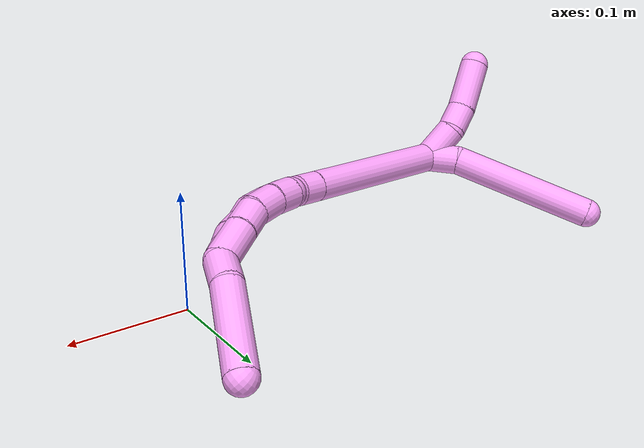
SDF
<sdf version="1.7">
 <world name="default">
  <model name="4">
   <static>0</static>
   <link name="4">
    <collision name="collision-cylinder-e_1_2_8">
     <pose>-0.009016 0.004822 0.008979 -0.492837 -0.724253 0.190002</pose>
     <geometry><cylinder><radius>0.0125</radius><length>0.027214</length></cylinder></geometry>
     <surface>
      <friction><ode><mu>1.16</mu><mu2>1.16</mu2><slip1>0</slip1><slip2>0</slip2></ode></friction>
      <contact><ode><kp>1e+06</kp><kd>1</kd><max_vel>0</max_vel><min_depth>0.001</min_depth></ode></contact>
     </surface>
    </collision>
    <visual name="visual-cylinder-e_1_2_8">
     <pose>-0.009016 0.004822 0.008979 -0.492837 -0.724253 0.190002</pose>
     <geometry><cylinder><radius>0.0125</radius><length>0.027214</length></cylinder></geometry>
     <material><ambient>1 0.65098 0.996078 1</ambient></material>
    </visual>
    <collision name="collision-cylinder-e_2_8_6">
     <pose>-0.068056 0.033826 0.044069 -0.74704 -0.952442 0.39894</pose>
     <geometry><cylinder><radius>0.0125</radius><length>0.122786</length></cylinder></geometry>
     <surface>
      <friction><ode><mu>1.16</mu><mu2>1.16</mu2><slip1>0</slip1><slip2>0</slip2></ode></friction>
      <contact><ode><kp>1e+06</kp><kd>1</kd><max_vel>0</max_vel><min_depth>0.001</min_depth></ode></contact>
     </surface>
    </collision>
    <visual name="visual-cylinder-e_2_8_6">
     <pose>-0.068056 0.033826 0.044069 -0.74704 -0.952442 0.39894</pose>
     <geometry><cylinder><radius>0.0125</radius><length>0.122786</length></cylinder></geometry>
     <material><ambient>1 0.65098 0.996078 1</ambient></material>
    </visual>
    <collision name="collision-cylinder-e_1_2_9">
     <pose>0.000697 -0.003339 0.016163 0.203704 0.042205 0.004314</pose>
     <geometry><cylinder><radius>0.0125</radius><length>0.033038</length></cylinder></geometry>
     <surface>
      <friction><ode><mu>1.16</mu><mu2>1.16</mu2><slip1>0</slip1><slip2>0</slip2></ode></friction>
      <contact><ode><kp>1e+06</kp><kd>1</kd><max_vel>0</max_vel><min_depth>0.001</min_depth></ode></contact>
     </surface>
    </collision>
    <visual name="visual-cylinder-e_1_2_9">
     <pose>0.000697 -0.003339 0.016163 0.203704 0.042205 0.004314</pose>
     <geometry><cylinder><radius>0.0125</radius><length>0.033038</length></cylinder></geometry>
     <material><ambient>1 0.65098 0.996078 1</ambient></material>
    </visual>
    <collision name="collision-cylinder-e_2_9_10">
     <pose>0.003161 -0.012337 0.041925 0.532771 0.157229 0.042985</pose>
     <geometry><cylinder><radius>0.0125</radius><length>0.022564</length></cylinder></geometry>
     <surface>
      <friction><ode><mu>1.16</mu><mu2>1.16</mu2><slip1>0</slip1><slip2>0</slip2></ode></friction>
      <contact><ode><kp>1e+06</kp><kd>1</kd><max_vel>0</max_vel><min_depth>0.001</min_depth></ode></contact>
     </surface>
    </collision>
    <visual name="visual-cylinder-e_2_9_10">
     <pose>0.003161 -0.012337 0.041925 0.532771 0.157229 0.042985</pose>
     <geometry><cylinder><radius>0.0125</radius><length>0.022564</length></cylinder></geometry>
     <material><ambient>1 0.65098 0.996078 1</ambient></material>
    </visual>
    <collision name="collision-cylinder-e_3_10_5">
     <pose>0.012429 -0.0285 0.069584 0.526718 0.344728 0.093809</pose>
     <geometry><cylinder><radius>0.0125</radius><length>0.044398</length></cylinder></geometry>
     <surface>
      <friction><ode><mu>1.16</mu><mu2>1.16</mu2><slip1>0</slip1><slip2>0</slip2></ode></friction>
      <contact><ode><kp>1e+06</kp><kd>1</kd><max_vel>0</max_vel><min_depth>0.001</min_depth></ode></contact>
     </surface>
    </collision>
    <visual name="visual-cylinder-e_3_10_5">
     <pose>0.012429 -0.0285 0.069584 0.526718 0.344728 0.093809</pose>
     <geometry><cylinder><radius>0.0125</radius><length>0.044398</length></cylinder></geometry>
     <material><ambient>1 0.65098 0.996078 1</ambient></material>
    </visual>
    <collision name="collision-cylinder-e_1_2_11">
     <pose>0.040575 0.039306 -0.040175 -2.36713 0.625285 -1.34043</pose>
     <geometry><cylinder><radius>0.0125</radius><length>0.138642</length></cylinder></geometry>
     <surface>
      <friction><ode><mu>1.16</mu><mu2>1.16</mu2><slip1>0</slip1><slip2>0</slip2></ode></friction>
      <contact><ode><kp>1e+06</kp><kd>1</kd><max_vel>0</max_vel><min_depth>0.001</min_depth></ode></contact>
     </surface>
    </collision>
    <visual name="visual-cylinder-e_1_2_11">
     <pose>0.040575 0.039306 -0.040175 -2.36713 0.625285 -1.34043</pose>
     <geometry><cylinder><radius>0.0125</radius><length>0.138642</length></cylinder></geometry>
     <material><ambient>1 0.65098 0.996078 1</ambient></material>
    </visual>
    <collision name="collision-cylinder-e_2_11_12">
     <pose>0.087299 0.084783 -0.086165 -2.32657 0.627382 -1.28892</pose>
     <geometry><cylinder><radius>0.0125</radius><length>0.020946</length></cylinder></geometry>
     <surface>
      <friction><ode><mu>1.16</mu><mu2>1.16</mu2><slip1>0</slip1><slip2>0</slip2></ode></friction>
      <contact><ode><kp>1e+06</kp><kd>1</kd><max_vel>0</max_vel><min_depth>0.001</min_depth></ode></contact>
     </surface>
    </collision>
    <visual name="visual-cylinder-e_2_11_12">
     <pose>0.087299 0.084783 -0.086165 -2.32657 0.627382 -1.28892</pose>
     <geometry><cylinder><radius>0.0125</radius><length>0.020946</length></cylinder></geometry>
     <material><ambient>1 0.65098 0.996078 1</ambient></material>
    </visual>
    <collision name="collision-cylinder-e_3_12_13">
     <pose>0.099042 0.098427 -0.096041 -2.06852 0.581808 -0.932751</pose>
     <geometry><cylinder><radius>0.0125</radius><length>0.020362</length></cylinder></geometry>
     <surface>
      <friction><ode><mu>1.16</mu><mu2>1.16</mu2><slip1>0</slip1><slip2>0</slip2></ode></friction>
      <contact><ode><kp>1e+06</kp><kd>1</kd><max_vel>0</max_vel><min_depth>0.001</min_depth></ode></contact>
     </surface>
    </collision>
    <visual name="visual-cylinder-e_3_12_13">
     <pose>0.099042 0.098427 -0.096041 -2.06852 0.581808 -0.932751</pose>
     <geometry><cylinder><radius>0.0125</radius><length>0.020362</length></cylinder></geometry>
     <material><ambient>1 0.65098 0.996078 1</ambient></material>
    </visual>
    <collision name="collision-cylinder-e_4_13_14">
     <pose>0.109526 0.112354 -0.105978 -2.3094 0.510674 -1.06712</pose>
     <geometry><cylinder><radius>0.0125</radius><length>0.020006</length></cylinder></geometry>
     <surface>
      <friction><ode><mu>1.16</mu><mu2>1.16</mu2><slip1>0</slip1><slip2>0</slip2></ode></friction>
      <contact><ode><kp>1e+06</kp><kd>1</kd><max_vel>0</max_vel><min_depth>0.001</min_depth></ode></contact>
     </surface>
    </collision>
    <visual name="visual-cylinder-e_4_13_14">
     <pose>0.109526 0.112354 -0.105978 -2.3094 0.510674 -1.06712</pose>
     <geometry><cylinder><radius>0.0125</radius><length>0.020006</length></cylinder></geometry>
     <material><ambient>1 0.65098 0.996078 1</ambient></material>
    </visual>
    <collision name="collision-cylinder-e_5_14_15">
     <pose>0.11864 0.126564 -0.116584 -2.1184 0.435248 -0.750375</pose>
     <geometry><cylinder><radius>0.0125</radius><length>0.020041</length></cylinder></geometry>
     <surface>
      <friction><ode><mu>1.16</mu><mu2>1.16</mu2><slip1>0</slip1><slip2>0</slip2></ode></friction>
      <contact><ode><kp>1e+06</kp><kd>1</kd><max_vel>0</max_vel><min_depth>0.001</min_depth></ode></contact>
     </surface>
    </collision>
    <visual name="visual-cylinder-e_5_14_15">
     <pose>0.11864 0.126564 -0.116584 -2.1184 0.435248 -0.750375</pose>
     <geometry><cylinder><radius>0.0125</radius><length>0.020041</length></cylinder></geometry>
     <material><ambient>1 0.65098 0.996078 1</ambient></material>
    </visual>
    <collision name="collision-cylinder-e_6_15_16">
     <pose>0.12419 0.143376 -0.125348 -1.98986 0.132918 -0.204305</pose>
     <geometry><cylinder><radius>0.0125</radius><length>0.020001</length></cylinder></geometry>
     <surface>
      <friction><ode><mu>1.16</mu><mu2>1.16</mu2><slip1>0</slip1><slip2>0</slip2></ode></friction>
      <contact><ode><kp>1e+06</kp><kd>1</kd><max_vel>0</max_vel><min_depth>0.001</min_depth></ode></contact>
     </surface>
    </collision>
    <visual name="visual-cylinder-e_6_15_16">
     <pose>0.12419 0.143376 -0.125348 -1.98986 0.132918 -0.204305</pose>
     <geometry><cylinder><radius>0.0125</radius><length>0.020001</length></cylinder></geometry>
     <material><ambient>1 0.65098 0.996078 1</ambient></material>
    </visual>
    <collision name="collision-cylinder-e_7_16_17">
     <pose>0.128121 0.161102 -0.133627 -2.02616 0.26359 -0.418806</pose>
     <geometry><cylinder><radius>0.0125</radius><length>0.02</length></cylinder></geometry>
     <surface>
      <friction><ode><mu>1.16</mu><mu2>1.16</mu2><slip1>0</slip1><slip2>0</slip2></ode></friction>
      <contact><ode><kp>1e+06</kp><kd>1</kd><max_vel>0</max_vel><min_depth>0.001</min_depth></ode></contact>
     </surface>
    </collision>
    <visual name="visual-cylinder-e_7_16_17">
     <pose>0.128121 0.161102 -0.133627 -2.02616 0.26359 -0.418806</pose>
     <geometry><cylinder><radius>0.0125</radius><length>0.02</length></cylinder></geometry>
     <material><ambient>1 0.65098 0.996078 1</ambient></material>
    </visual>
    <collision name="collision-cylinder-e_8_17_18">
     <pose>0.131612 0.179454 -0.140216 -1.80823 0.088615 -0.112572</pose>
     <geometry><cylinder><radius>0.0125</radius><length>0.02</length></cylinder></geometry>
     <surface>
      <friction><ode><mu>1.16</mu><mu2>1.16</mu2><slip1>0</slip1><slip2>0</slip2></ode></friction>
      <contact><ode><kp>1e+06</kp><kd>1</kd><max_vel>0</max_vel><min_depth>0.001</min_depth></ode></contact>
     </surface>
    </collision>
    <visual name="visual-cylinder-e_8_17_18">
     <pose>0.131612 0.179454 -0.140216 -1.80823 0.088615 -0.112572</pose>
     <geometry><cylinder><radius>0.0125</radius><length>0.02</length></cylinder></geometry>
     <material><ambient>1 0.65098 0.996078 1</ambient></material>
    </visual>
    <collision name="collision-cylinder-e_9_18_1">
     <pose>0.134131 0.198696 -0.144997 -1.82046 0.1642 -0.211013</pose>
     <geometry><cylinder><radius>0.0125</radius><length>0.020001</length></cylinder></geometry>
     <surface>
      <friction><ode><mu>1.16</mu><mu2>1.16</mu2><slip1>0</slip1><slip2>0</slip2></ode></friction>
      <contact><ode><kp>1e+06</kp><kd>1</kd><max_vel>0</max_vel><min_depth>0.001</min_depth></ode></contact>
     </surface>
    </collision>
    <visual name="visual-cylinder-e_9_18_1">
     <pose>0.134131 0.198696 -0.144997 -1.82046 0.1642 -0.211013</pose>
     <geometry><cylinder><radius>0.0125</radius><length>0.020001</length></cylinder></geometry>
     <material><ambient>1 0.65098 0.996078 1</ambient></material>
    </visual>
    <collision name="collision-cylinder-e_1_1_19">
     <pose>0.134464 0.195251 -0.137412 0.914196 -0.079153 -0.038946</pose>
     <geometry><cylinder><radius>0.0125</radius><length>0.03294</length></cylinder></geometry>
     <surface>
      <friction><ode><mu>1.16</mu><mu2>1.16</mu2><slip1>0</slip1><slip2>0</slip2></ode></friction>
      <contact><ode><kp>1e+06</kp><kd>1</kd><max_vel>0</max_vel><min_depth>0.001</min_depth></ode></contact>
     </surface>
    </collision>
    <visual name="visual-cylinder-e_1_1_19">
     <pose>0.134464 0.195251 -0.137412 0.914196 -0.079153 -0.038946</pose>
     <geometry><cylinder><radius>0.0125</radius><length>0.03294</length></cylinder></geometry>
     <material><ambient>1 0.65098 0.996078 1</ambient></material>
    </visual>
    <collision name="collision-cylinder-e_2_19_20">
     <pose>0.131954 0.172903 -0.121069 0.976002 -0.106662 -0.056657</pose>
     <geometry><cylinder><radius>0.0125</radius><length>0.022691</length></cylinder></geometry>
     <surface>
      <friction><ode><mu>1.16</mu><mu2>1.16</mu2><slip1>0</slip1><slip2>0</slip2></ode></friction>
      <contact><ode><kp>1e+06</kp><kd>1</kd><max_vel>0</max_vel><min_depth>0.001</min_depth></ode></contact>
     </surface>
    </collision>
    <visual name="visual-cylinder-e_2_19_20">
     <pose>0.131954 0.172903 -0.121069 0.976002 -0.106662 -0.056657</pose>
     <geometry><cylinder><radius>0.0125</radius><length>0.022691</length></cylinder></geometry>
     <material><ambient>1 0.65098 0.996078 1</ambient></material>
    </visual>
    <collision name="collision-cylinder-e_3_20_21">
     <pose>0.125986 0.154998 -0.107987 0.902353 -0.411443 -0.201523</pose>
     <geometry><cylinder><radius>0.0125</radius><length>0.023803</length></cylinder></geometry>
     <surface>
      <friction><ode><mu>1.16</mu><mu2>1.16</mu2><slip1>0</slip1><slip2>0</slip2></ode></friction>
      <contact><ode><kp>1e+06</kp><kd>1</kd><max_vel>0</max_vel><min_depth>0.001</min_depth></ode></contact>
     </surface>
    </collision>
    <visual name="visual-cylinder-e_3_20_21">
     <pose>0.125986 0.154998 -0.107987 0.902353 -0.411443 -0.201523</pose>
     <geometry><cylinder><radius>0.0125</radius><length>0.023803</length></cylinder></geometry>
     <material><ambient>1 0.65098 0.996078 1</ambient></material>
    </visual>
    <collision name="collision-cylinder-e_4_21_4">
     <pose>0.116039 0.13931 -0.095932 0.931934 -0.528818 -0.270655</pose>
     <geometry><cylinder><radius>0.0125</radius><length>0.020566</length></cylinder></geometry>
     <surface>
      <friction><ode><mu>1.16</mu><mu2>1.16</mu2><slip1>0</slip1><slip2>0</slip2></ode></friction>
      <contact><ode><kp>1e+06</kp><kd>1</kd><max_vel>0</max_vel><min_depth>0.001</min_depth></ode></contact>
     </surface>
    </collision>
    <visual name="visual-cylinder-e_4_21_4">
     <pose>0.116039 0.13931 -0.095932 0.931934 -0.528818 -0.270655</pose>
     <geometry><cylinder><radius>0.0125</radius><length>0.020566</length></cylinder></geometry>
     <material><ambient>1 0.65098 0.996078 1</ambient></material>
    </visual>
    <collision name="collision-cylinder-e_1_1_22">
     <pose>0.132103 0.220566 -0.14883 -1.68365 -0.287525 0.321392</pose>
     <geometry><cylinder><radius>0.0125</radius><length>0.025838</length></cylinder></geometry>
     <surface>
      <friction><ode><mu>1.16</mu><mu2>1.16</mu2><slip1>0</slip1><slip2>0</slip2></ode></friction>
      <contact><ode><kp>1e+06</kp><kd>1</kd><max_vel>0</max_vel><min_depth>0.001</min_depth></ode></contact>
     </surface>
    </collision>
    <visual name="visual-cylinder-e_1_1_22">
     <pose>0.132103 0.220566 -0.14883 -1.68365 -0.287525 0.321392</pose>
     <geometry><cylinder><radius>0.0125</radius><length>0.025838</length></cylinder></geometry>
     <material><ambient>1 0.65098 0.996078 1</ambient></material>
    </visual>
    <collision name="collision-cylinder-e_2_22_3">
     <pose>0.114364 0.265463 -0.160946 -1.88863 -0.389337 0.531943</pose>
     <geometry><cylinder><radius>0.0125</radius><length>0.074162</length></cylinder></geometry>
     <surface>
      <friction><ode><mu>1.16</mu><mu2>1.16</mu2><slip1>0</slip1><slip2>0</slip2></ode></friction>
      <contact><ode><kp>1e+06</kp><kd>1</kd><max_vel>0</max_vel><min_depth>0.001</min_depth></ode></contact>
     </surface>
    </collision>
    <visual name="visual-cylinder-e_2_22_3">
     <pose>0.114364 0.265463 -0.160946 -1.88863 -0.389337 0.531943</pose>
     <geometry><cylinder><radius>0.0125</radius><length>0.074162</length></cylinder></geometry>
     <material><ambient>1 0.65098 0.996078 1</ambient></material>
    </visual>
    <collision name="collision-sphere-3">
     <pose>0.100289 0.298051 -0.171666 0 -0 0</pose>
     <geometry><sphere><radius>0.0125</radius></sphere></geometry>
     <surface>
      <friction><ode><mu>1.16</mu><mu2>1.16</mu2><slip1>0</slip1><slip2>0</slip2></ode></friction>
      <contact><ode><kp>1e+06</kp><kd>1</kd><max_vel>0</max_vel><min_depth>0.001</min_depth></ode></contact>
     </surface>
    </collision>
    <visual name="visual-sphere-3">
     <pose>0.100289 0.298051 -0.171666 0 -0 0</pose>
     <geometry><sphere><radius>0.0125</radius></sphere></geometry>
     <material><ambient>1 0.65098 0.996078 1</ambient></material>
    </visual>
    <collision name="collision-sphere-22">
     <pose>0.128439 0.232876 -0.150225 0 -0 0</pose>
     <geometry><sphere><radius>0.0125</radius></sphere></geometry>
     <surface>
      <friction><ode><mu>1.16</mu><mu2>1.16</mu2><slip1>0</slip1><slip2>0</slip2></ode></friction>
      <contact><ode><kp>1e+06</kp><kd>1</kd><max_vel>0</max_vel><min_depth>0.001</min_depth></ode></contact>
     </surface>
    </collision>
    <visual name="visual-sphere-22">
     <pose>0.128439 0.232876 -0.150225 0 -0 0</pose>
     <geometry><sphere><radius>0.0125</radius></sphere></geometry>
     <material><ambient>1 0.65098 0.996078 1</ambient></material>
    </visual>
    <collision name="collision-sphere-4">
     <pose>0.110851 0.132183 -0.090638 0 -0 0</pose>
     <geometry><sphere><radius>0.0125</radius></sphere></geometry>
     <surface>
      <friction><ode><mu>1.16</mu><mu2>1.16</mu2><slip1>0</slip1><slip2>0</slip2></ode></friction>
      <contact><ode><kp>1e+06</kp><kd>1</kd><max_vel>0</max_vel><min_depth>0.001</min_depth></ode></contact>
     </surface>
    </collision>
    <visual name="visual-sphere-4">
     <pose>0.110851 0.132183 -0.090638 0 -0 0</pose>
     <geometry><sphere><radius>0.0125</radius></sphere></geometry>
     <material><ambient>1 0.65098 0.996078 1</ambient></material>
    </visual>
    <collision name="collision-sphere-21">
     <pose>0.121226 0.146438 -0.101226 0 -0 0</pose>
     <geometry><sphere><radius>0.0125</radius></sphere></geometry>
     <surface>
      <friction><ode><mu>1.16</mu><mu2>1.16</mu2><slip1>0</slip1><slip2>0</slip2></ode></friction>
      <contact><ode><kp>1e+06</kp><kd>1</kd><max_vel>0</max_vel><min_depth>0.001</min_depth></ode></contact>
     </surface>
    </collision>
    <visual name="visual-sphere-21">
     <pose>0.121226 0.146438 -0.101226 0 -0 0</pose>
     <geometry><sphere><radius>0.0125</radius></sphere></geometry>
     <material><ambient>1 0.65098 0.996078 1</ambient></material>
    </visual>
    <collision name="collision-sphere-20">
     <pose>0.130746 0.163559 -0.114747 0 -0 0</pose>
     <geometry><sphere><radius>0.0125</radius></sphere></geometry>
     <surface>
      <friction><ode><mu>1.16</mu><mu2>1.16</mu2><slip1>0</slip1><slip2>0</slip2></ode></friction>
      <contact><ode><kp>1e+06</kp><kd>1</kd><max_vel>0</max_vel><min_depth>0.001</min_depth></ode></contact>
     </surface>
    </collision>
    <visual name="visual-sphere-20">
     <pose>0.130746 0.163559 -0.114747 0 -0 0</pose>
     <geometry><sphere><radius>0.0125</radius></sphere></geometry>
     <material><ambient>1 0.65098 0.996078 1</ambient></material>
    </visual>
    <collision name="collision-sphere-5">
     <pose>0.019931 -0.039003 0.087645 0 -0 0</pose>
     <geometry><sphere><radius>0.0125</radius></sphere></geometry>
     <surface>
      <friction><ode><mu>1.16</mu><mu2>1.16</mu2><slip1>0</slip1><slip2>0</slip2></ode></friction>
      <contact><ode><kp>1e+06</kp><kd>1</kd><max_vel>0</max_vel><min_depth>0.001</min_depth></ode></contact>
     </surface>
    </collision>
    <visual name="visual-sphere-5">
     <pose>0.019931 -0.039003 0.087645 0 -0 0</pose>
     <geometry><sphere><radius>0.0125</radius></sphere></geometry>
     <material><ambient>1 0.65098 0.996078 1</ambient></material>
    </visual>
    <collision name="collision-sphere-10">
     <pose>0.004927 -0.017997 0.051523 0 -0 0</pose>
     <geometry><sphere><radius>0.0125</radius></sphere></geometry>
     <surface>
      <friction><ode><mu>1.16</mu><mu2>1.16</mu2><slip1>0</slip1><slip2>0</slip2></ode></friction>
      <contact><ode><kp>1e+06</kp><kd>1</kd><max_vel>0</max_vel><min_depth>0.001</min_depth></ode></contact>
     </surface>
    </collision>
    <visual name="visual-sphere-10">
     <pose>0.004927 -0.017997 0.051523 0 -0 0</pose>
     <geometry><sphere><radius>0.0125</radius></sphere></geometry>
     <material><ambient>1 0.65098 0.996078 1</ambient></material>
    </visual>
    <collision name="collision-sphere-6">
     <pose>-0.118081 0.058007 0.070181 0 -0 0</pose>
     <geometry><sphere><radius>0.0125</radius></sphere></geometry>
     <surface>
      <friction><ode><mu>1.16</mu><mu2>1.16</mu2><slip1>0</slip1><slip2>0</slip2></ode></friction>
      <contact><ode><kp>1e+06</kp><kd>1</kd><max_vel>0</max_vel><min_depth>0.001</min_depth></ode></contact>
     </surface>
    </collision>
    <visual name="visual-sphere-6">
     <pose>-0.118081 0.058007 0.070181 0 -0 0</pose>
     <geometry><sphere><radius>0.0125</radius></sphere></geometry>
     <material><ambient>1 0.65098 0.996078 1</ambient></material>
    </visual>
    <collision name="collision-sphere-9">
     <pose>0.001394 -0.006678 0.032326 0 -0 0</pose>
     <geometry><sphere><radius>0.0125</radius></sphere></geometry>
     <surface>
      <friction><ode><mu>1.16</mu><mu2>1.16</mu2><slip1>0</slip1><slip2>0</slip2></ode></friction>
      <contact><ode><kp>1e+06</kp><kd>1</kd><max_vel>0</max_vel><min_depth>0.001</min_depth></ode></contact>
     </surface>
    </collision>
    <visual name="visual-sphere-9">
     <pose>0.001394 -0.006678 0.032326 0 -0 0</pose>
     <geometry><sphere><radius>0.0125</radius></sphere></geometry>
     <material><ambient>1 0.65098 0.996078 1</ambient></material>
    </visual>
    <collision name="collision-sphere-2">
     <geometry><sphere><radius>0.0125</radius></sphere></geometry>
     <surface>
      <friction><ode><mu>1.16</mu><mu2>1.16</mu2><slip1>0</slip1><slip2>0</slip2></ode></friction>
      <contact><ode><kp>1e+06</kp><kd>1</kd><max_vel>0</max_vel><min_depth>0.001</min_depth></ode></contact>
     </surface>
    </collision>
    <visual name="visual-sphere-2">
     <geometry><sphere><radius>0.0125</radius></sphere></geometry>
     <material><ambient>1 0.65098 0.996078 1</ambient></material>
    </visual>
    <collision name="collision-sphere-19">
     <pose>0.133162 0.182246 -0.12739 0 -0 0</pose>
     <geometry><sphere><radius>0.0125</radius></sphere></geometry>
     <surface>
      <friction><ode><mu>1.16</mu><mu2>1.16</mu2><slip1>0</slip1><slip2>0</slip2></ode></friction>
      <contact><ode><kp>1e+06</kp><kd>1</kd><max_vel>0</max_vel><min_depth>0.001</min_depth></ode></contact>
     </surface>
    </collision>
    <visual name="visual-sphere-19">
     <pose>0.133162 0.182246 -0.12739 0 -0 0</pose>
     <geometry><sphere><radius>0.0125</radius></sphere></geometry>
     <material><ambient>1 0.65098 0.996078 1</ambient></material>
    </visual>
    <collision name="collision-sphere-8">
     <pose>-0.018031 0.009644 0.017958 0 -0 0</pose>
     <geometry><sphere><radius>0.0125</radius></sphere></geometry>
     <surface>
      <friction><ode><mu>1.16</mu><mu2>1.16</mu2><slip1>0</slip1><slip2>0</slip2></ode></friction>
      <contact><ode><kp>1e+06</kp><kd>1</kd><max_vel>0</max_vel><min_depth>0.001</min_depth></ode></contact>
     </surface>
    </collision>
    <visual name="visual-sphere-8">
     <pose>-0.018031 0.009644 0.017958 0 -0 0</pose>
     <geometry><sphere><radius>0.0125</radius></sphere></geometry>
     <material><ambient>1 0.65098 0.996078 1</ambient></material>
    </visual>
    <collision name="collision-sphere-11">
     <pose>0.081151 0.078612 -0.08035 0 -0 0</pose>
     <geometry><sphere><radius>0.0125</radius></sphere></geometry>
     <surface>
      <friction><ode><mu>1.16</mu><mu2>1.16</mu2><slip1>0</slip1><slip2>0</slip2></ode></friction>
      <contact><ode><kp>1e+06</kp><kd>1</kd><max_vel>0</max_vel><min_depth>0.001</min_depth></ode></contact>
     </surface>
    </collision>
    <visual name="visual-sphere-11">
     <pose>0.081151 0.078612 -0.08035 0 -0 0</pose>
     <geometry><sphere><radius>0.0125</radius></sphere></geometry>
     <material><ambient>1 0.65098 0.996078 1</ambient></material>
    </visual>
    <collision name="collision-sphere-12">
     <pose>0.093447 0.090953 -0.09198 0 -0 0</pose>
     <geometry><sphere><radius>0.0125</radius></sphere></geometry>
     <surface>
      <friction><ode><mu>1.16</mu><mu2>1.16</mu2><slip1>0</slip1><slip2>0</slip2></ode></friction>
      <contact><ode><kp>1e+06</kp><kd>1</kd><max_vel>0</max_vel><min_depth>0.001</min_depth></ode></contact>
     </surface>
    </collision>
    <visual name="visual-sphere-12">
     <pose>0.093447 0.090953 -0.09198 0 -0 0</pose>
     <geometry><sphere><radius>0.0125</radius></sphere></geometry>
     <material><ambient>1 0.65098 0.996078 1</ambient></material>
    </visual>
    <collision name="collision-sphere-13">
     <pose>0.104637 0.105901 -0.100102 0 -0 0</pose>
     <geometry><sphere><radius>0.0125</radius></sphere></geometry>
     <surface>
      <friction><ode><mu>1.16</mu><mu2>1.16</mu2><slip1>0</slip1><slip2>0</slip2></ode></friction>
      <contact><ode><kp>1e+06</kp><kd>1</kd><max_vel>0</max_vel><min_depth>0.001</min_depth></ode></contact>
     </surface>
    </collision>
    <visual name="visual-sphere-13">
     <pose>0.104637 0.105901 -0.100102 0 -0 0</pose>
     <geometry><sphere><radius>0.0125</radius></sphere></geometry>
     <material><ambient>1 0.65098 0.996078 1</ambient></material>
    </visual>
    <collision name="collision-sphere-14">
     <pose>0.114415 0.118806 -0.111853 0 -0 0</pose>
     <geometry><sphere><radius>0.0125</radius></sphere></geometry>
     <surface>
      <friction><ode><mu>1.16</mu><mu2>1.16</mu2><slip1>0</slip1><slip2>0</slip2></ode></friction>
      <contact><ode><kp>1e+06</kp><kd>1</kd><max_vel>0</max_vel><min_depth>0.001</min_depth></ode></contact>
     </surface>
    </collision>
    <visual name="visual-sphere-14">
     <pose>0.114415 0.118806 -0.111853 0 -0 0</pose>
     <geometry><sphere><radius>0.0125</radius></sphere></geometry>
     <material><ambient>1 0.65098 0.996078 1</ambient></material>
    </visual>
    <collision name="collision-sphere-15">
     <pose>0.122865 0.134322 -0.121315 0 -0 0</pose>
     <geometry><sphere><radius>0.0125</radius></sphere></geometry>
     <surface>
      <friction><ode><mu>1.16</mu><mu2>1.16</mu2><slip1>0</slip1><slip2>0</slip2></ode></friction>
      <contact><ode><kp>1e+06</kp><kd>1</kd><max_vel>0</max_vel><min_depth>0.001</min_depth></ode></contact>
     </surface>
    </collision>
    <visual name="visual-sphere-15">
     <pose>0.122865 0.134322 -0.121315 0 -0 0</pose>
     <geometry><sphere><radius>0.0125</radius></sphere></geometry>
     <material><ambient>1 0.65098 0.996078 1</ambient></material>
    </visual>
    <collision name="collision-sphere-16">
     <pose>0.125516 0.152431 -0.129381 0 -0 0</pose>
     <geometry><sphere><radius>0.0125</radius></sphere></geometry>
     <surface>
      <friction><ode><mu>1.16</mu><mu2>1.16</mu2><slip1>0</slip1><slip2>0</slip2></ode></friction>
      <contact><ode><kp>1e+06</kp><kd>1</kd><max_vel>0</max_vel><min_depth>0.001</min_depth></ode></contact>
     </surface>
    </collision>
    <visual name="visual-sphere-16">
     <pose>0.125516 0.152431 -0.129381 0 -0 0</pose>
     <geometry><sphere><radius>0.0125</radius></sphere></geometry>
     <material><ambient>1 0.65098 0.996078 1</ambient></material>
    </visual>
    <collision name="collision-sphere-17">
     <pose>0.130727 0.169773 -0.137873 0 -0 0</pose>
     <geometry><sphere><radius>0.0125</radius></sphere></geometry>
     <surface>
      <friction><ode><mu>1.16</mu><mu2>1.16</mu2><slip1>0</slip1><slip2>0</slip2></ode></friction>
      <contact><ode><kp>1e+06</kp><kd>1</kd><max_vel>0</max_vel><min_depth>0.001</min_depth></ode></contact>
     </surface>
    </collision>
    <visual name="visual-sphere-17">
     <pose>0.130727 0.169773 -0.137873 0 -0 0</pose>
     <geometry><sphere><radius>0.0125</radius></sphere></geometry>
     <material><ambient>1 0.65098 0.996078 1</ambient></material>
    </visual>
    <collision name="collision-sphere-18">
     <pose>0.132497 0.189135 -0.142559 0 -0 0</pose>
     <geometry><sphere><radius>0.0125</radius></sphere></geometry>
     <surface>
      <friction><ode><mu>1.16</mu><mu2>1.16</mu2><slip1>0</slip1><slip2>0</slip2></ode></friction>
      <contact><ode><kp>1e+06</kp><kd>1</kd><max_vel>0</max_vel><min_depth>0.001</min_depth></ode></contact>
     </surface>
    </collision>
    <visual name="visual-sphere-18">
     <pose>0.132497 0.189135 -0.142559 0 -0 0</pose>
     <geometry><sphere><radius>0.0125</radius></sphere></geometry>
     <material><ambient>1 0.65098 0.996078 1</ambient></material>
    </visual>
    <collision name="collision-sphere-1">
     <pose>0.135766 0.208256 -0.147435 0 -0 0</pose>
     <geometry><sphere><radius>0.0125</radius></sphere></geometry>
     <surface>
      <friction><ode><mu>1.16</mu><mu2>1.16</mu2><slip1>0</slip1><slip2>0</slip2></ode></friction>
      <contact><ode><kp>1e+06</kp><kd>1</kd><max_vel>0</max_vel><min_depth>0.001</min_depth></ode></contact>
     </surface>
    </collision>
    <visual name="visual-sphere-1">
     <pose>0.135766 0.208256 -0.147435 0 -0 0</pose>
     <geometry><sphere><radius>0.0125</radius></sphere></geometry>
     <material><ambient>1 0.65098 0.996078 1</ambient></material>
    </visual>
    <inertial>
     <pose>0.054865 0.096791 -0.05606 0 -0 0</pose>
     <mass>0.75</mass>
     <inertia><ixx>6e-05</ixx><ixy>0</ixy><ixz>0</ixz><iyy>0.000101</iyy><iyz>0</iyz><izz>-0.000212</izz></inertia>
    </inertial>
   </link>
   <pose>-0.253656 -0.015535 0.070878 0.054697 -0.845767 -0.473271</pose>
  </model>
 </world>
</sdf>
